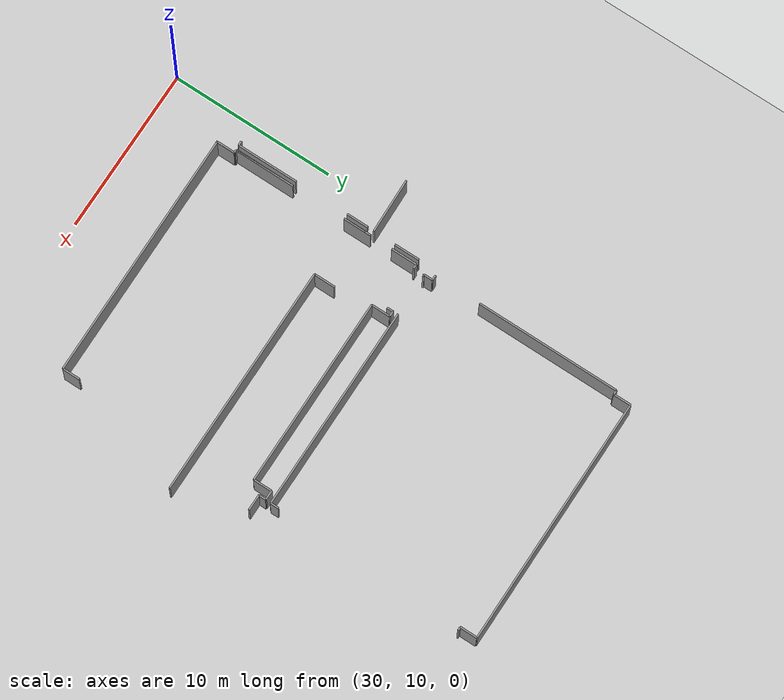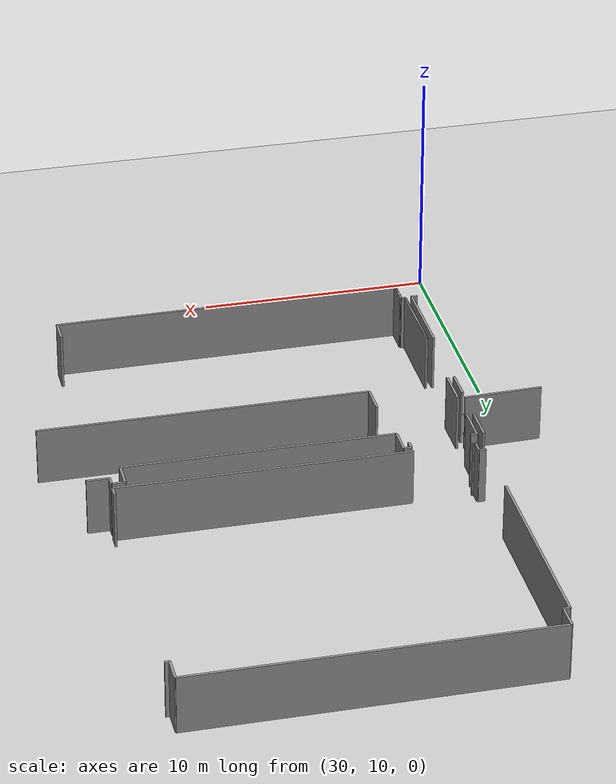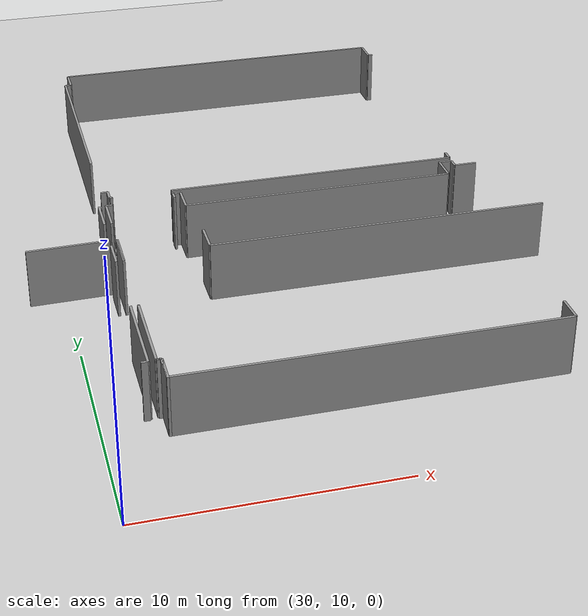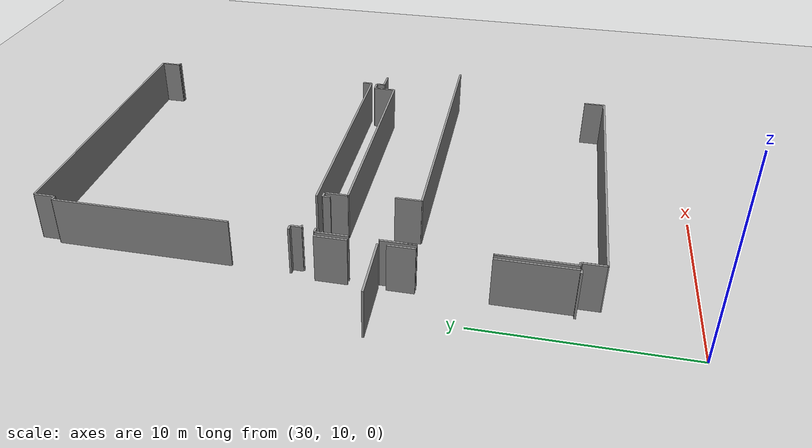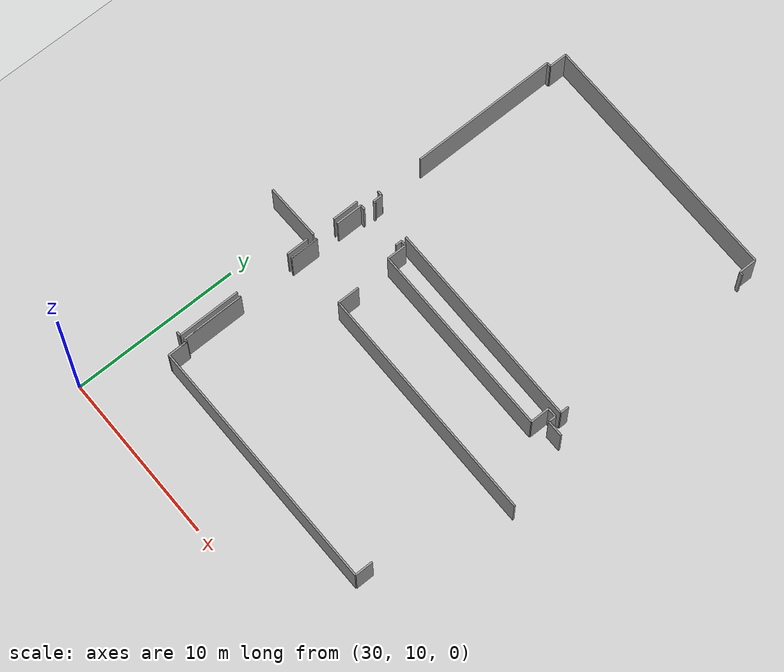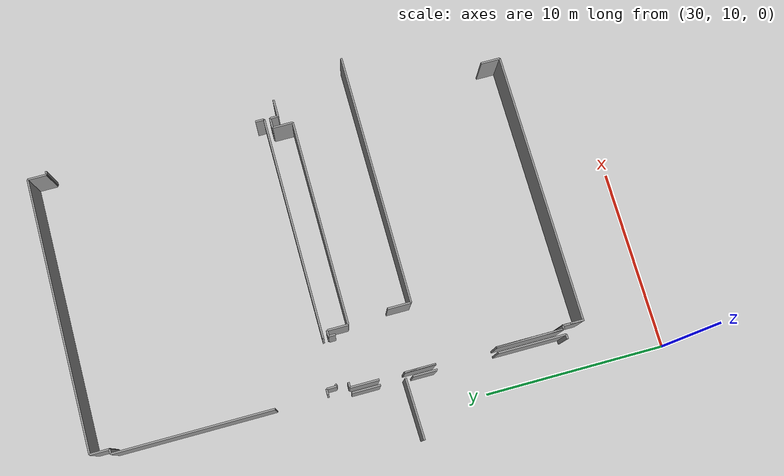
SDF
<sdf version="1.6">
 <world name="default">
  <model name="ground_plane">
   <static>1</static>
   <link name="link">
    <collision name="collision">
     <geometry><plane><normal>0 0 1</normal><size>100 100</size></plane></geometry>
     <surface><friction><ode><mu>100</mu><mu2>50</mu2></ode></friction></surface>
    </collision>
    <visual name="visual">
     <cast_shadows>0</cast_shadows>
     <geometry><plane><normal>0 0 1</normal><size>100 100</size></plane></geometry>
     <material>
      <script><uri>file://media/materials/scripts/gazebo.material</uri><name>Gazebo/Grey</name></script>
     </material>
    </visual>
   </link>
  </model>
  <model name="0510035740_A_40_1_103">
   <static>1</static>
   <link name="Wall_395">
    <collision name="Wall_395_Collision">
     <geometry><box><size>1.32408647044 0.1 2.5</size></box></geometry>
     <pose>0.662043235218 0 1.25 0 0 0</pose>
    </collision>
    <visual name="Wall_395_Visual">
     <pose>0.662043235218 0 1.25 0 0 0</pose>
     <geometry><box><size>1.32408647044 0.1 2.5</size></box></geometry>
     <material>
      <script><uri>file://media/materials/scripts/gazebo.material</uri><name>Gazebo/Grey</name></script>
      <ambient>1 1 1 1</ambient>
     </material>
    </visual>
    <pose>125.80928028 -25.8847864571 0 0 0 -1.57079632679</pose>
   </link>
   <link name="Wall_396">
    <collision name="Wall_396_Collision">
     <geometry><box><size>3.73723850434 0.1 2.5</size></box></geometry>
     <pose>1.86861925217 0 1.25 0 0 0</pose>
    </collision>
    <visual name="Wall_396_Visual">
     <pose>1.86861925217 0 1.25 0 0 0</pose>
     <geometry><box><size>3.73723850434 0.1 2.5</size></box></geometry>
     <material>
      <script><uri>file://media/materials/scripts/gazebo.material</uri><name>Gazebo/Grey</name></script>
      <ambient>1 1 1 1</ambient>
     </material>
    </visual>
    <pose>125.80928028 -30.5357131527 0 0 0 -1.57079632679</pose>
   </link>
   <link name="Wall_397">
    <collision name="Wall_397_Collision">
     <geometry><box><size>0.252787066236 0.1 2.5</size></box></geometry>
     <pose>0.126393533118 0 1.25 0 0 0</pose>
    </collision>
    <visual name="Wall_397_Visual">
     <pose>0.126393533118 0 1.25 0 0 0</pose>
     <geometry><box><size>0.252787066236 0.1 2.5</size></box></geometry>
     <material>
      <script><uri>file://media/materials/scripts/gazebo.material</uri><name>Gazebo/Grey</name></script>
      <ambient>1 1 1 1</ambient>
     </material>
    </visual>
    <pose>125.80928028 -34.272951657 0 0 0 3.14159265359</pose>
   </link>
   <link name="Wall_414">
    <collision name="Wall_414_Collision">
     <geometry><box><size>1.13500377531 0.1 2.5</size></box></geometry>
     <pose>0.567501887654 0 1.25 0 0 0</pose>
    </collision>
    <visual name="Wall_414_Visual">
     <pose>0.567501887654 0 1.25 0 0 0</pose>
     <geometry><box><size>1.13500377531 0.1 2.5</size></box></geometry>
     <material>
      <script><uri>file://media/materials/scripts/gazebo.material</uri><name>Gazebo/Grey</name></script>
      <ambient>1 1 1 1</ambient>
     </material>
    </visual>
    <pose>126.290743197 -35.3577025818 0 0 0 1.57079632679</pose>
   </link>
   <link name="Wall_415">
    <collision name="Wall_415_Collision">
     <geometry><box><size>0.183499045069 0.1 2.5</size></box></geometry>
     <pose>0.0917495225345 0 1.25 0 0 0</pose>
    </collision>
    <visual name="Wall_415_Visual">
     <pose>0.0917495225345 0 1.25 0 0 0</pose>
     <geometry><box><size>0.183499045069 0.1 2.5</size></box></geometry>
     <material>
      <script><uri>file://media/materials/scripts/gazebo.material</uri><name>Gazebo/Grey</name></script>
      <ambient>1 1 1 1</ambient>
     </material>
    </visual>
    <pose>126.290743197 -34.2226988065 0 0 0 3.14159265359</pose>
   </link>
   <link name="Wall_416">
    <collision name="Wall_416_Collision">
     <geometry><box><size>3.67124991276 0.1 2.5</size></box></geometry>
     <pose>1.83562495638 0 1.25 0 0 0</pose>
    </collision>
    <visual name="Wall_416_Visual">
     <pose>1.83562495638 0 1.25 0 0 0</pose>
     <geometry><box><size>3.67124991276 0.1 2.5</size></box></geometry>
     <material>
      <script><uri>file://media/materials/scripts/gazebo.material</uri><name>Gazebo/Grey</name></script>
      <ambient>1 1 1 1</ambient>
     </material>
    </visual>
    <pose>126.107244151 -34.2226988065 0 0 0 1.57079632679</pose>
   </link>
   <link name="Wall_417">
    <collision name="Wall_417_Collision">
     <geometry><box><size>1.68803893327 0.1 2.5</size></box></geometry>
     <pose>0.844019466635 0 1.25 0 0 0</pose>
    </collision>
    <visual name="Wall_417_Visual">
     <pose>0.844019466635 0 1.25 0 0 0</pose>
     <geometry><box><size>1.68803893327 0.1 2.5</size></box></geometry>
     <material>
      <script><uri>file://media/materials/scripts/gazebo.material</uri><name>Gazebo/Grey</name></script>
      <ambient>1 1 1 1</ambient>
     </material>
    </visual>
    <pose>126.107244151 -27.2139489731 0 0 0 1.57079632679</pose>
   </link>
   <link name="Wall_418">
    <collision name="Wall_418_Collision">
     <geometry><box><size>1.17535833709 0.1 2.5</size></box></geometry>
     <pose>0.587679168544 0 1.25 0 0 0</pose>
    </collision>
    <visual name="Wall_418_Visual">
     <pose>0.587679168544 0 1.25 0 0 0</pose>
     <geometry><box><size>1.17535833709 0.1 2.5</size></box></geometry>
     <material>
      <script><uri>file://media/materials/scripts/gazebo.material</uri><name>Gazebo/Grey</name></script>
      <ambient>1 1 1 1</ambient>
     </material>
    </visual>
    <pose>126.300895288 -35.4104934551 0 0 0 1.57079632679</pose>
   </link>
   <link name="Wall_419">
    <collision name="Wall_419_Collision">
     <geometry><box><size>0.191874520155 0.1 2.5</size></box></geometry>
     <pose>0.0959372600775 0 1.25 0 0 0</pose>
    </collision>
    <visual name="Wall_419_Visual">
     <pose>0.0959372600775 0 1.25 0 0 0</pose>
     <geometry><box><size>0.191874520155 0.1 2.5</size></box></geometry>
     <material>
      <script><uri>file://media/materials/scripts/gazebo.material</uri><name>Gazebo/Grey</name></script>
      <ambient>1 1 1 1</ambient>
     </material>
    </visual>
    <pose>126.300895288 -34.235135118 0 0 0 3.14159265359</pose>
   </link>
   <link name="Wall_420">
    <collision name="Wall_420_Collision">
     <geometry><box><size>3.7027213949 0.1 2.5</size></box></geometry>
     <pose>1.85136069745 0 1.25 0 0 0</pose>
    </collision>
    <visual name="Wall_420_Visual">
     <pose>1.85136069745 0 1.25 0 0 0</pose>
     <geometry><box><size>3.7027213949 0.1 2.5</size></box></geometry>
     <material>
      <script><uri>file://media/materials/scripts/gazebo.material</uri><name>Gazebo/Grey</name></script>
      <ambient>1 1 1 1</ambient>
     </material>
    </visual>
    <pose>126.109020767 -34.235135118 0 0 0 1.57079632679</pose>
   </link>
   <link name="Wall_421">
    <collision name="Wall_421_Collision">
     <geometry><box><size>1.7124039517 0.1 2.5</size></box></geometry>
     <pose>0.856201975851 0 1.25 0 0 0</pose>
    </collision>
    <visual name="Wall_421_Visual">
     <pose>0.856201975851 0 1.25 0 0 0</pose>
     <geometry><box><size>1.7124039517 0.1 2.5</size></box></geometry>
     <material>
      <script><uri>file://media/materials/scripts/gazebo.material</uri><name>Gazebo/Grey</name></script>
      <ambient>1 1 1 1</ambient>
     </material>
    </visual>
    <pose>126.109020767 -27.1971980229 0 0 0 1.57079632679</pose>
   </link>
   <link name="Wall_422">
    <collision name="Wall_422_Collision">
     <geometry><box><size>1.58981745271 0.1 2.5</size></box></geometry>
     <pose>0.794908726357 0 1.25 0 0 0</pose>
    </collision>
    <visual name="Wall_422_Visual">
     <pose>0.794908726357 0 1.25 0 0 0</pose>
     <geometry><box><size>1.58981745271 0.1 2.5</size></box></geometry>
     <material>
      <script><uri>file://media/materials/scripts/gazebo.material</uri><name>Gazebo/Grey</name></script>
      <ambient>1 1 1 1</ambient>
     </material>
    </visual>
    <pose>126.109020767 -24.1277133049 0 0 0 1.57079632679</pose>
   </link>
   <link name="Wall_423">
    <collision name="Wall_423_Collision">
     <geometry><box><size>0.277659689219 0.1 2.5</size></box></geometry>
     <pose>0.13882984461 0 1.25 0 0 0</pose>
    </collision>
    <visual name="Wall_423_Visual">
     <pose>0.13882984461 0 1.25 0 0 0</pose>
     <geometry><box><size>0.277659689219 0.1 2.5</size></box></geometry>
     <material>
      <script><uri>file://media/materials/scripts/gazebo.material</uri><name>Gazebo/Grey</name></script>
      <ambient>1 1 1 1</ambient>
     </material>
    </visual>
    <pose>126.109020767 -22.5378958522 0 0 0 0.0</pose>
   </link>
   <link name="Wall_424">
    <collision name="Wall_424_Collision">
     <geometry><box><size>0.37613497205 0.1 2.5</size></box></geometry>
     <pose>0.188067486025 0 1.25 0 0 0</pose>
    </collision>
    <visual name="Wall_424_Visual">
     <pose>0.188067486025 0 1.25 0 0 0</pose>
     <geometry><box><size>0.37613497205 0.1 2.5</size></box></geometry>
     <material>
      <script><uri>file://media/materials/scripts/gazebo.material</uri><name>Gazebo/Grey</name></script>
      <ambient>1 1 1 1</ambient>
     </material>
    </visual>
    <pose>129.000082486 -22.5378958522 0 0 0 1.57079632679</pose>
   </link>
   <link name="Wall_425">
    <collision name="Wall_425_Collision">
     <geometry><box><size>0.319029460099 0.1 2.5</size></box></geometry>
     <pose>0.15951473005 0 1.25 0 0 0</pose>
    </collision>
    <visual name="Wall_425_Visual">
     <pose>0.15951473005 0 1.25 0 0 0</pose>
     <geometry><box><size>0.319029460099 0.1 2.5</size></box></geometry>
     <material>
      <script><uri>file://media/materials/scripts/gazebo.material</uri><name>Gazebo/Grey</name></script>
      <ambient>1 1 1 1</ambient>
     </material>
    </visual>
    <pose>129.000082486 -22.1617608802 0 0 0 0.0</pose>
   </link>
   <link name="Wall_426">
    <collision name="Wall_426_Collision">
     <geometry><box><size>1.16089160739 0.1 2.5</size></box></geometry>
     <pose>0.580445803697 0 1.25 0 0 0</pose>
    </collision>
    <visual name="Wall_426_Visual">
     <pose>0.580445803697 0 1.25 0 0 0</pose>
     <geometry><box><size>1.16089160739 0.1 2.5</size></box></geometry>
     <material>
      <script><uri>file://media/materials/scripts/gazebo.material</uri><name>Gazebo/Grey</name></script>
      <ambient>1 1 1 1</ambient>
     </material>
    </visual>
    <pose>129.319111946 -22.1617608802 0 0 0 -1.57079632679</pose>
   </link>
   <link name="Wall_427">
    <collision name="Wall_427_Collision">
     <geometry><box><size>11.5282069504 0.1 2.5</size></box></geometry>
     <pose>5.76410347519 0 1.25 0 0 0</pose>
    </collision>
    <visual name="Wall_427_Visual">
     <pose>5.76410347519 0 1.25 0 0 0</pose>
     <geometry><box><size>11.5282069504 0.1 2.5</size></box></geometry>
     <material>
      <script><uri>file://media/materials/scripts/gazebo.material</uri><name>Gazebo/Grey</name></script>
      <ambient>1 1 1 1</ambient>
     </material>
    </visual>
    <pose>129.319111946 -23.3226524876 0 0 0 0.0</pose>
   </link>
   <link name="Wall_428">
    <collision name="Wall_428_Collision">
     <geometry><box><size>1.13804940261 0.1 2.5</size></box></geometry>
     <pose>0.569024701306 0 1.25 0 0 0</pose>
    </collision>
    <visual name="Wall_428_Visual">
     <pose>0.569024701306 0 1.25 0 0 0</pose>
     <geometry><box><size>1.13804940261 0.1 2.5</size></box></geometry>
     <material>
      <script><uri>file://media/materials/scripts/gazebo.material</uri><name>Gazebo/Grey</name></script>
      <ambient>1 1 1 1</ambient>
     </material>
    </visual>
    <pose>140.847318896 -23.3226524876 0 0 0 1.57079632679</pose>
   </link>
   <link name="Wall_429">
    <collision name="Wall_429_Collision">
     <geometry><box><size>0.555319378438 0.1 2.5</size></box></geometry>
     <pose>0.277659689219 0 1.25 0 0 0</pose>
    </collision>
    <visual name="Wall_429_Visual">
     <pose>0.277659689219 0 1.25 0 0 0</pose>
     <geometry><box><size>0.555319378438 0.1 2.5</size></box></geometry>
     <material>
      <script><uri>file://media/materials/scripts/gazebo.material</uri><name>Gazebo/Grey</name></script>
      <ambient>1 1 1 1</ambient>
     </material>
    </visual>
    <pose>140.847318896 -22.184603085 0 0 0 0.0</pose>
   </link>
   <link name="Wall_430">
    <collision name="Wall_430_Collision">
     <geometry><box><size>0.441615959087 0.1 2.5</size></box></geometry>
     <pose>0.220807979544 0 1.25 0 0 0</pose>
    </collision>
    <visual name="Wall_430_Visual">
     <pose>0.220807979544 0 1.25 0 0 0</pose>
     <geometry><box><size>0.441615959087 0.1 2.5</size></box></geometry>
     <material>
      <script><uri>file://media/materials/scripts/gazebo.material</uri><name>Gazebo/Grey</name></script>
      <ambient>1 1 1 1</ambient>
     </material>
    </visual>
    <pose>141.402638275 -22.184603085 0 0 0 -1.57079632679</pose>
   </link>
   <link name="Wall_431">
    <collision name="Wall_431_Collision">
     <geometry><box><size>0.971555109992 0.1 2.5</size></box></geometry>
     <pose>0.485777554996 0 1.25 0 0 0</pose>
    </collision>
    <visual name="Wall_431_Visual">
     <pose>0.485777554996 0 1.25 0 0 0</pose>
     <geometry><box><size>0.971555109992 0.1 2.5</size></box></geometry>
     <material>
      <script><uri>file://media/materials/scripts/gazebo.material</uri><name>Gazebo/Grey</name></script>
      <ambient>1 1 1 1</ambient>
     </material>
    </visual>
    <pose>141.402638275 -22.6262190441 0 0 0 0.0</pose>
   </link>
   <link name="Wall_434">
    <collision name="Wall_434_Collision">
     <geometry><box><size>1.29616822015 0.1 2.5</size></box></geometry>
     <pose>0.648084110074 0 1.25 0 0 0</pose>
    </collision>
    <visual name="Wall_434_Visual">
     <pose>0.648084110074 0 1.25 0 0 0</pose>
     <geometry><box><size>1.29616822015 0.1 2.5</size></box></geometry>
     <material>
      <script><uri>file://media/materials/scripts/gazebo.material</uri><name>Gazebo/Grey</name></script>
      <ambient>1 1 1 1</ambient>
     </material>
    </visual>
    <pose>129.589918974 -25.5479908377 0 0 0 -1.57079632679</pose>
   </link>
   <link name="Wall_435">
    <collision name="Wall_435_Collision">
     <geometry><box><size>14.1246042271 0.1 2.5</size></box></geometry>
     <pose>7.06230211354 0 1.25 0 0 0</pose>
    </collision>
    <visual name="Wall_435_Visual">
     <pose>7.06230211354 0 1.25 0 0 0</pose>
     <geometry><box><size>14.1246042271 0.1 2.5</size></box></geometry>
     <material>
      <script><uri>file://media/materials/scripts/gazebo.material</uri><name>Gazebo/Grey</name></script>
      <ambient>1 1 1 1</ambient>
     </material>
    </visual>
    <pose>129.589918974 -26.8441590579 0 0 0 0.0</pose>
   </link>
   <link name="Wall_447">
    <collision name="Wall_447_Collision">
     <geometry><box><size>1.07383742695 0.1 2.5</size></box></geometry>
     <pose>0.536918713476 0 1.25 0 0 0</pose>
    </collision>
    <visual name="Wall_447_Visual">
     <pose>0.536918713476 0 1.25 0 0 0</pose>
     <geometry><box><size>1.07383742695 0.1 2.5</size></box></geometry>
     <material>
      <script><uri>file://media/materials/scripts/gazebo.material</uri><name>Gazebo/Grey</name></script>
      <ambient>1 1 1 1</ambient>
     </material>
    </visual>
    <pose>141.406952913 -34.2206683883 0 0 0 -1.57079632679</pose>
   </link>
   <link name="Wall_448">
    <collision name="Wall_448_Collision">
     <geometry><box><size>15.1163418205 0.1 2.5</size></box></geometry>
     <pose>7.55817091025 0 1.25 0 0 0</pose>
    </collision>
    <visual name="Wall_448_Visual">
     <pose>7.55817091025 0 1.25 0 0 0</pose>
     <geometry><box><size>15.1163418205 0.1 2.5</size></box></geometry>
     <material>
      <script><uri>file://media/materials/scripts/gazebo.material</uri><name>Gazebo/Grey</name></script>
      <ambient>1 1 1 1</ambient>
     </material>
    </visual>
    <pose>141.406952913 -35.2945058152 0 0 0 -3.13741194959</pose>
   </link>
   <link name="Wall_449">
    <collision name="Wall_449_Collision">
     <geometry><box><size>0.550750937482 0.1 2.5</size></box></geometry>
     <pose>0.275375468741 0 1.25 0 0 0</pose>
    </collision>
    <visual name="Wall_449_Visual">
     <pose>0.275375468741 0 1.25 0 0 0</pose>
     <geometry><box><size>0.550750937482 0.1 2.5</size></box></geometry>
     <material>
      <script><uri>file://media/materials/scripts/gazebo.material</uri><name>Gazebo/Grey</name></script>
      <ambient>1 1 1 1</ambient>
     </material>
    </visual>
    <pose>126.357493195 -21.8904462479 0 0 0 1.57079632679</pose>
   </link>
   <link name="Wall_450">
    <collision name="Wall_450_Collision">
     <geometry><box><size>0.300501893999 0.1 2.5</size></box></geometry>
     <pose>0.150250947 0 1.25 0 0 0</pose>
    </collision>
    <visual name="Wall_450_Visual">
     <pose>0.150250947 0 1.25 0 0 0</pose>
     <geometry><box><size>0.300501893999 0.1 2.5</size></box></geometry>
     <material>
      <script><uri>file://media/materials/scripts/gazebo.material</uri><name>Gazebo/Grey</name></script>
      <ambient>1 1 1 1</ambient>
     </material>
    </visual>
    <pose>126.357493195 -21.3396953104 0 0 0 3.14159265359</pose>
   </link>
   <link name="Wall_451">
    <collision name="Wall_451_Collision">
     <geometry><box><size>8.77851309937 0.1 2.5</size></box></geometry>
     <pose>4.38925654968 0 1.25 0 0 0</pose>
    </collision>
    <visual name="Wall_451_Visual">
     <pose>4.38925654968 0 1.25 0 0 0</pose>
     <geometry><box><size>8.77851309937 0.1 2.5</size></box></geometry>
     <material>
      <script><uri>file://media/materials/scripts/gazebo.material</uri><name>Gazebo/Grey</name></script>
      <ambient>1 1 1 1</ambient>
     </material>
    </visual>
    <pose>126.056991301 -18.4960946175 0 0 0 1.57079632679</pose>
   </link>
   <link name="Wall_452">
    <collision name="Wall_452_Collision">
     <geometry><box><size>0.254056077613 0.1 2.5</size></box></geometry>
     <pose>0.127028038806 0 1.25 0 0 0</pose>
    </collision>
    <visual name="Wall_452_Visual">
     <pose>0.127028038806 0 1.25 0 0 0</pose>
     <geometry><box><size>0.254056077613 0.1 2.5</size></box></geometry>
     <material>
      <script><uri>file://media/materials/scripts/gazebo.material</uri><name>Gazebo/Grey</name></script>
      <ambient>1 1 1 1</ambient>
     </material>
    </visual>
    <pose>126.056991301 -9.71758151812 0 0 0 0.0</pose>
   </link>
   <link name="Wall_453">
    <collision name="Wall_453_Collision">
     <geometry><box><size>1.06013210408 0.1 2.5</size></box></geometry>
     <pose>0.530066052042 0 1.25 0 0 0</pose>
    </collision>
    <visual name="Wall_453_Visual">
     <pose>0.530066052042 0 1.25 0 0 0</pose>
     <geometry><box><size>1.06013210408 0.1 2.5</size></box></geometry>
     <material>
      <script><uri>file://media/materials/scripts/gazebo.material</uri><name>Gazebo/Grey</name></script>
      <ambient>1 1 1 1</ambient>
     </material>
    </visual>
    <pose>126.311047379 -9.71758151812 0 0 0 1.57079632679</pose>
   </link>
   <link name="Wall_454">
    <collision name="Wall_454_Collision">
     <geometry><box><size>15.1829597152 0.1 2.5</size></box></geometry>
     <pose>7.59147985762 0 1.25 0 0 0</pose>
    </collision>
    <visual name="Wall_454_Visual">
     <pose>7.59147985762 0 1.25 0 0 0</pose>
     <geometry><box><size>15.1829597152 0.1 2.5</size></box></geometry>
     <material>
      <script><uri>file://media/materials/scripts/gazebo.material</uri><name>Gazebo/Grey</name></script>
      <ambient>1 1 1 1</ambient>
     </material>
    </visual>
    <pose>126.311047379 -8.65744941403 0 0 0 0.0</pose>
   </link>
   <link name="Wall_455">
    <collision name="Wall_455_Collision">
     <geometry><box><size>1.0537870472 0.1 2.5</size></box></geometry>
     <pose>0.5268935236 0 1.25 0 0 0</pose>
    </collision>
    <visual name="Wall_455_Visual">
     <pose>0.5268935236 0 1.25 0 0 0</pose>
     <geometry><box><size>1.0537870472 0.1 2.5</size></box></geometry>
     <material>
      <script><uri>file://media/materials/scripts/gazebo.material</uri><name>Gazebo/Grey</name></script>
      <ambient>1 1 1 1</ambient>
     </material>
    </visual>
    <pose>141.494007094 -8.65744941403 0 0 0 -1.57079632679</pose>
   </link>
   <link name="Wall_456">
    <collision name="Wall_456_Collision">
     <geometry><box><size>0.203295622545 0.1 2.5</size></box></geometry>
     <pose>0.101647811273 0 1.25 0 0 0</pose>
    </collision>
    <visual name="Wall_456_Visual">
     <pose>0.101647811273 0 1.25 0 0 0</pose>
     <geometry><box><size>0.203295622545 0.1 2.5</size></box></geometry>
     <material>
      <script><uri>file://media/materials/scripts/gazebo.material</uri><name>Gazebo/Grey</name></script>
      <ambient>1 1 1 1</ambient>
     </material>
    </visual>
    <pose>141.494007094 -9.71123646123 0 0 0 0.0</pose>
   </link>
   <link name="Wall_459">
    <collision name="Wall_459_Collision">
     <geometry><box><size>0.500498086965 0.1 2.5</size></box></geometry>
     <pose>0.250249043483 0 1.25 0 0 0</pose>
    </collision>
    <visual name="Wall_459_Visual">
     <pose>0.250249043483 0 1.25 0 0 0</pose>
     <geometry><box><size>0.500498086965 0.1 2.5</size></box></geometry>
     <material>
      <script><uri>file://media/materials/scripts/gazebo.material</uri><name>Gazebo/Grey</name></script>
      <ambient>1 1 1 1</ambient>
     </material>
    </visual>
    <pose>141.426749491 -21.3564462605 0 0 0 -1.57079632679</pose>
   </link>
   <link name="Wall_460">
    <collision name="Wall_460_Collision">
     <geometry><box><size>12.4523010349 0.1 2.5</size></box></geometry>
     <pose>6.22615051744 0 1.25 0 0 0</pose>
    </collision>
    <visual name="Wall_460_Visual">
     <pose>6.22615051744 0 1.25 0 0 0</pose>
     <geometry><box><size>12.4523010349 0.1 2.5</size></box></geometry>
     <material>
      <script><uri>file://media/materials/scripts/gazebo.material</uri><name>Gazebo/Grey</name></script>
      <ambient>1 1 1 1</ambient>
     </material>
    </visual>
    <pose>141.426749491 -21.8569443475 0 0 0 3.14159265359</pose>
   </link>
   <link name="Wall_461">
    <collision name="Wall_461_Collision">
     <geometry><box><size>0.130758183456 0.1 2.5</size></box></geometry>
     <pose>0.0653790917281 0 1.25 0 0 0</pose>
    </collision>
    <visual name="Wall_461_Visual">
     <pose>0.0653790917281 0 1.25 0 0 0</pose>
     <geometry><box><size>0.130758183456 0.1 2.5</size></box></geometry>
     <material>
      <script><uri>file://media/materials/scripts/gazebo.material</uri><name>Gazebo/Grey</name></script>
      <ambient>1 1 1 1</ambient>
     </material>
    </visual>
    <pose>126.483886728 -21.8569443475 0 0 0 -2.88249063581</pose>
   </link>
   <link name="Wall_680">
    <collision name="Wall_680_Collision">
     <geometry><box><size>1.5580921683 0.1 2.5</size></box></geometry>
     <pose>0.779046084148 0 1.25 0 0 0</pose>
    </collision>
    <visual name="Wall_680_Visual">
     <pose>0.779046084148 0 1.25 0 0 0</pose>
     <geometry><box><size>1.5580921683 0.1 2.5</size></box></geometry>
     <material>
      <script><uri>file://media/materials/scripts/gazebo.material</uri><name>Gazebo/Grey</name></script>
      <ambient>1 1 1 1</ambient>
     </material>
    </visual>
    <pose>125.814356326 -22.5642912889 0 0 0 -1.57079632679</pose>
   </link>
   <link name="Wall_681">
    <collision name="Wall_681_Collision">
     <geometry><box><size>3.33637946094 0.1 2.5</size></box></geometry>
     <pose>1.66818973047 0 1.25 0 0 0</pose>
    </collision>
    <visual name="Wall_681_Visual">
     <pose>1.66818973047 0 1.25 0 0 0</pose>
     <geometry><box><size>3.33637946094 0.1 2.5</size></box></geometry>
     <material>
      <script><uri>file://media/materials/scripts/gazebo.material</uri><name>Gazebo/Grey</name></script>
      <ambient>1 1 1 1</ambient>
     </material>
    </visual>
    <pose>125.814356326 -25.4817484439 0 0 0 -3.11823668228</pose>
   </link>
   <pose>-93.95 49.6557238758 0 0 0 0</pose>
  </model>
 </world>
</sdf>
